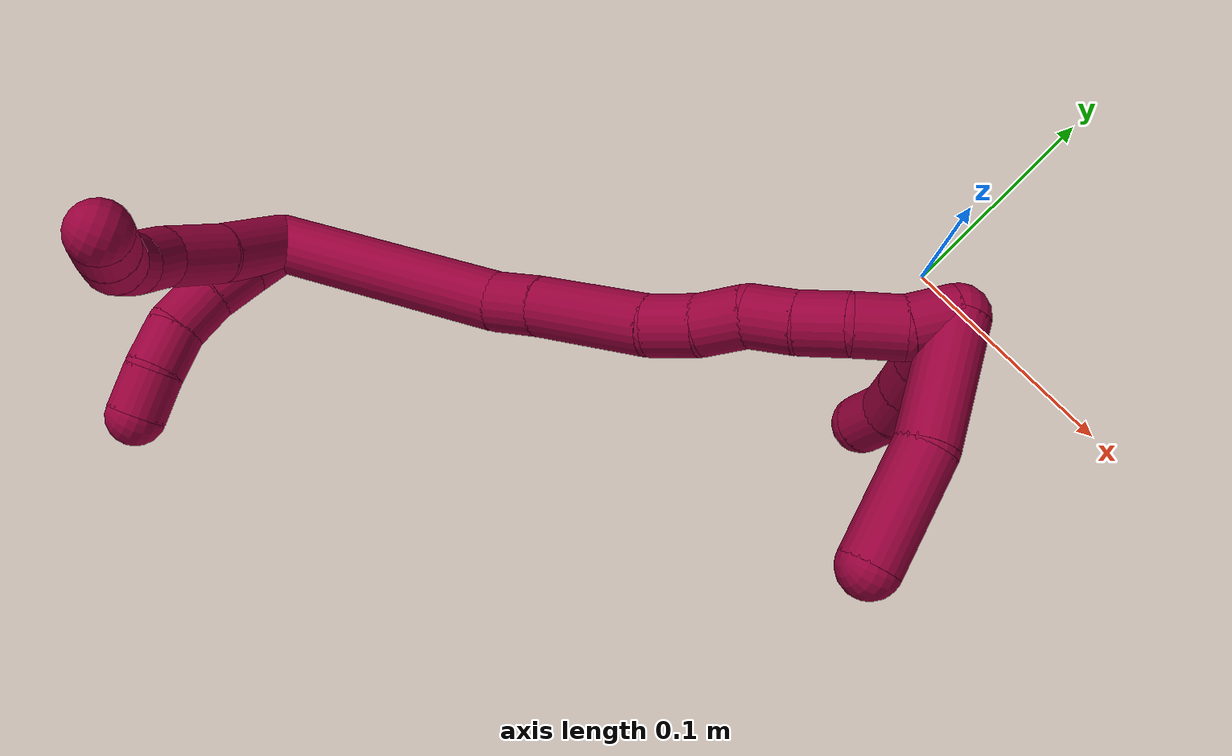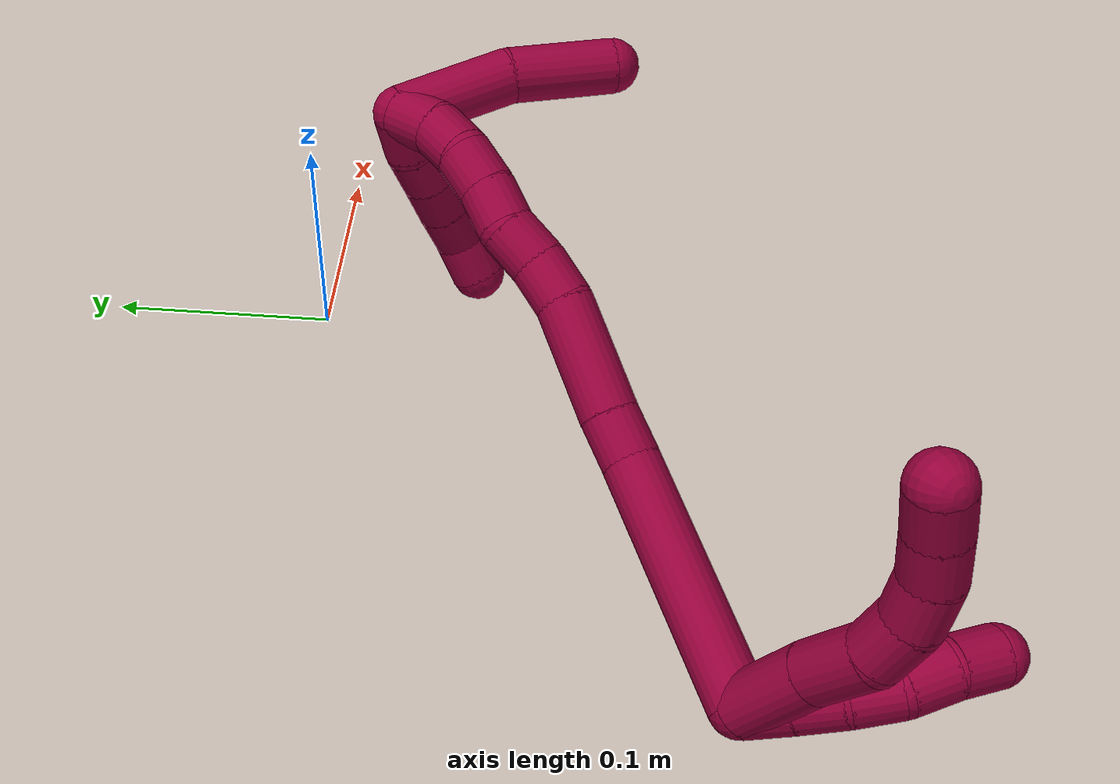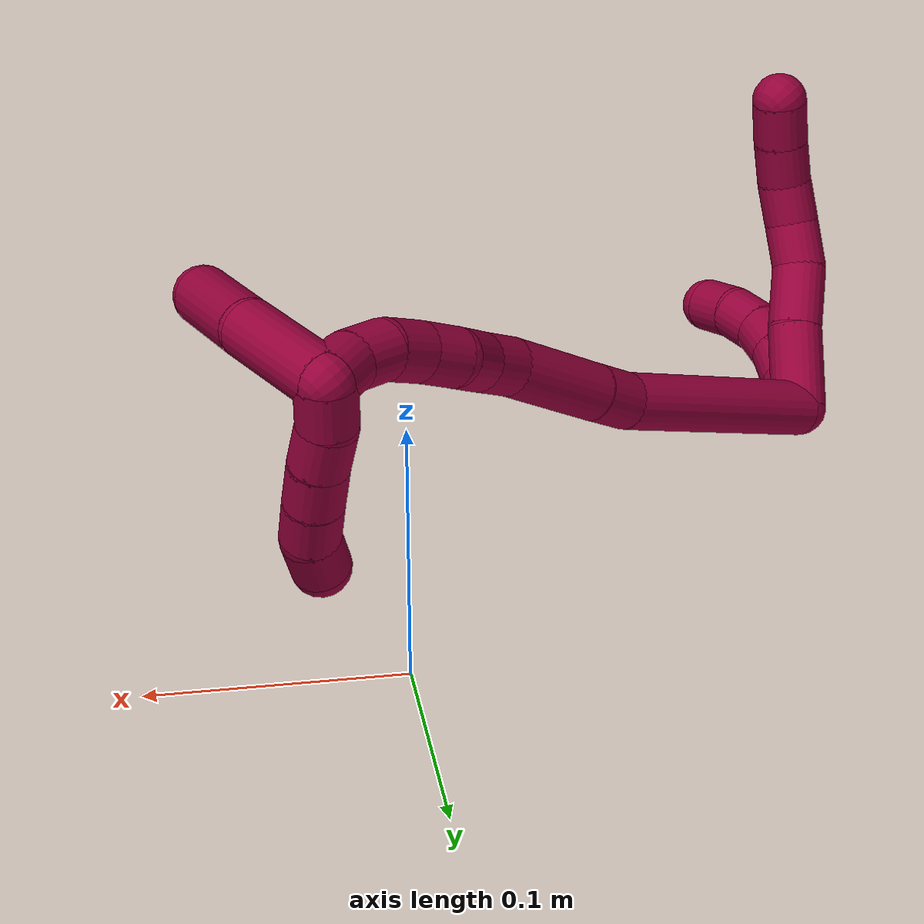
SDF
<sdf version="1.7">
 <world name="default">
  <model name="8">
   <static>0</static>
   <link name="8">
    <collision name="collision-cylinder-e_1_2_8">
     <pose>0.013883 -0.001551 0.012957 0.119114 0.816331 0.051561</pose>
     <geometry><cylinder><radius>0.0125</radius><length>0.038106</length></cylinder></geometry>
     <surface>
      <friction><ode><mu>1.16</mu><mu2>1.16</mu2><slip1>0</slip1><slip2>0</slip2></ode></friction>
      <contact><ode><kp>1e+06</kp><kd>1</kd><max_vel>0</max_vel><min_depth>0.001</min_depth></ode></contact>
     </surface>
    </collision>
    <visual name="visual-cylinder-e_1_2_8">
     <pose>0.013883 -0.001551 0.012957 0.119114 0.816331 0.051561</pose>
     <geometry><cylinder><radius>0.0125</radius><length>0.038106</length></cylinder></geometry>
     <material><ambient>0.584314 0 0.227451 1</ambient></material>
    </visual>
    <collision name="collision-cylinder-e_2_8_9">
     <pose>0.037263 -0.004254 0.037216 0.101597 0.696268 0.036899</pose>
     <geometry><cylinder><radius>0.0125</radius><length>0.029616</length></cylinder></geometry>
     <surface>
      <friction><ode><mu>1.16</mu><mu2>1.16</mu2><slip1>0</slip1><slip2>0</slip2></ode></friction>
      <contact><ode><kp>1e+06</kp><kd>1</kd><max_vel>0</max_vel><min_depth>0.001</min_depth></ode></contact>
     </surface>
    </collision>
    <visual name="visual-cylinder-e_2_8_9">
     <pose>0.037263 -0.004254 0.037216 0.101597 0.696268 0.036899</pose>
     <geometry><cylinder><radius>0.0125</radius><length>0.029616</length></cylinder></geometry>
     <material><ambient>0.584314 0 0.227451 1</ambient></material>
    </visual>
    <collision name="collision-cylinder-e_3_9_10">
     <pose>0.055801 -0.004874 0.054159 -0.093973 1.01109 -0.052043</pose>
     <geometry><cylinder><radius>0.0125</radius><length>0.021339</length></cylinder></geometry>
     <surface>
      <friction><ode><mu>1.16</mu><mu2>1.16</mu2><slip1>0</slip1><slip2>0</slip2></ode></friction>
      <contact><ode><kp>1e+06</kp><kd>1</kd><max_vel>0</max_vel><min_depth>0.001</min_depth></ode></contact>
     </surface>
    </collision>
    <visual name="visual-cylinder-e_3_9_10">
     <pose>0.055801 -0.004874 0.054159 -0.093973 1.01109 -0.052043</pose>
     <geometry><cylinder><radius>0.0125</radius><length>0.021339</length></cylinder></geometry>
     <material><ambient>0.584314 0 0.227451 1</ambient></material>
    </visual>
    <collision name="collision-cylinder-e_4_10_11">
     <pose>0.073674 -0.001122 0.063647 -0.696886 1.05406 -0.41666</pose>
     <geometry><cylinder><radius>0.0125</radius><length>0.020315</length></cylinder></geometry>
     <surface>
      <friction><ode><mu>1.16</mu><mu2>1.16</mu2><slip1>0</slip1><slip2>0</slip2></ode></friction>
      <contact><ode><kp>1e+06</kp><kd>1</kd><max_vel>0</max_vel><min_depth>0.001</min_depth></ode></contact>
     </surface>
    </collision>
    <visual name="visual-cylinder-e_4_10_11">
     <pose>0.073674 -0.001122 0.063647 -0.696886 1.05406 -0.41666</pose>
     <geometry><cylinder><radius>0.0125</radius><length>0.020315</length></cylinder></geometry>
     <material><ambient>0.584314 0 0.227451 1</ambient></material>
    </visual>
    <collision name="collision-cylinder-e_5_11_12">
     <pose>0.090485 0.007734 0.07047 -1.08507 0.89689 -0.564641</pose>
     <geometry><cylinder><radius>0.0125</radius><length>0.020423</length></cylinder></geometry>
     <surface>
      <friction><ode><mu>1.16</mu><mu2>1.16</mu2><slip1>0</slip1><slip2>0</slip2></ode></friction>
      <contact><ode><kp>1e+06</kp><kd>1</kd><max_vel>0</max_vel><min_depth>0.001</min_depth></ode></contact>
     </surface>
    </collision>
    <visual name="visual-cylinder-e_5_11_12">
     <pose>0.090485 0.007734 0.07047 -1.08507 0.89689 -0.564641</pose>
     <geometry><cylinder><radius>0.0125</radius><length>0.020423</length></cylinder></geometry>
     <material><ambient>0.584314 0 0.227451 1</ambient></material>
    </visual>
    <collision name="collision-cylinder-e_6_12_6">
     <pose>0.10597 0.019396 0.076505 -1.10098 0.837765 -0.53352</pose>
     <geometry><cylinder><radius>0.0125</radius><length>0.020201</length></cylinder></geometry>
     <surface>
      <friction><ode><mu>1.16</mu><mu2>1.16</mu2><slip1>0</slip1><slip2>0</slip2></ode></friction>
      <contact><ode><kp>1e+06</kp><kd>1</kd><max_vel>0</max_vel><min_depth>0.001</min_depth></ode></contact>
     </surface>
    </collision>
    <visual name="visual-cylinder-e_6_12_6">
     <pose>0.10597 0.019396 0.076505 -1.10098 0.837765 -0.53352</pose>
     <geometry><cylinder><radius>0.0125</radius><length>0.020201</length></cylinder></geometry>
     <material><ambient>0.584314 0 0.227451 1</ambient></material>
    </visual>
    <collision name="collision-cylinder-e_1_2_13">
     <pose>0.005357 -0.006347 0.005569 0.850606 0.565328 0.261607</pose>
     <geometry><cylinder><radius>0.0125</radius><length>0.02</length></cylinder></geometry>
     <surface>
      <friction><ode><mu>1.16</mu><mu2>1.16</mu2><slip1>0</slip1><slip2>0</slip2></ode></friction>
      <contact><ode><kp>1e+06</kp><kd>1</kd><max_vel>0</max_vel><min_depth>0.001</min_depth></ode></contact>
     </surface>
    </collision>
    <visual name="visual-cylinder-e_1_2_13">
     <pose>0.005357 -0.006347 0.005569 0.850606 0.565328 0.261607</pose>
     <geometry><cylinder><radius>0.0125</radius><length>0.02</length></cylinder></geometry>
     <material><ambient>0.584314 0 0.227451 1</ambient></material>
    </visual>
    <collision name="collision-cylinder-e_2_13_14">
     <pose>0.016252 -0.019051 0.016516 0.868627 0.58692 0.278524</pose>
     <geometry><cylinder><radius>0.0125</radius><length>0.02</length></cylinder></geometry>
     <surface>
      <friction><ode><mu>1.16</mu><mu2>1.16</mu2><slip1>0</slip1><slip2>0</slip2></ode></friction>
      <contact><ode><kp>1e+06</kp><kd>1</kd><max_vel>0</max_vel><min_depth>0.001</min_depth></ode></contact>
     </surface>
    </collision>
    <visual name="visual-cylinder-e_2_13_14">
     <pose>0.016252 -0.019051 0.016516 0.868627 0.58692 0.278524</pose>
     <geometry><cylinder><radius>0.0125</radius><length>0.02</length></cylinder></geometry>
     <material><ambient>0.584314 0 0.227451 1</ambient></material>
    </visual>
    <collision name="collision-cylinder-e_3_14_15">
     <pose>0.02743 -0.032742 0.02569 1.09321 0.599219 0.37157</pose>
     <geometry><cylinder><radius>0.0125</radius><length>0.02</length></cylinder></geometry>
     <surface>
      <friction><ode><mu>1.16</mu><mu2>1.16</mu2><slip1>0</slip1><slip2>0</slip2></ode></friction>
      <contact><ode><kp>1e+06</kp><kd>1</kd><max_vel>0</max_vel><min_depth>0.001</min_depth></ode></contact>
     </surface>
    </collision>
    <visual name="visual-cylinder-e_3_14_15">
     <pose>0.02743 -0.032742 0.02569 1.09321 0.599219 0.37157</pose>
     <geometry><cylinder><radius>0.0125</radius><length>0.02</length></cylinder></geometry>
     <material><ambient>0.584314 0 0.227451 1</ambient></material>
    </visual>
    <collision name="collision-cylinder-e_4_15_16">
     <pose>0.039288 -0.047831 0.030578 1.43081 0.671079 0.588471</pose>
     <geometry><cylinder><radius>0.0125</radius><length>0.02</length></cylinder></geometry>
     <surface>
      <friction><ode><mu>1.16</mu><mu2>1.16</mu2><slip1>0</slip1><slip2>0</slip2></ode></friction>
      <contact><ode><kp>1e+06</kp><kd>1</kd><max_vel>0</max_vel><min_depth>0.001</min_depth></ode></contact>
     </surface>
    </collision>
    <visual name="visual-cylinder-e_4_15_16">
     <pose>0.039288 -0.047831 0.030578 1.43081 0.671079 0.588471</pose>
     <geometry><cylinder><radius>0.0125</radius><length>0.02</length></cylinder></geometry>
     <material><ambient>0.584314 0 0.227451 1</ambient></material>
    </visual>
    <collision name="collision-cylinder-e_5_16_5">
     <pose>0.050148 -0.064443 0.031676 1.57016 0.482641 0.482344</pose>
     <geometry><cylinder><radius>0.0125</radius><length>0.02</length></cylinder></geometry>
     <surface>
      <friction><ode><mu>1.16</mu><mu2>1.16</mu2><slip1>0</slip1><slip2>0</slip2></ode></friction>
      <contact><ode><kp>1e+06</kp><kd>1</kd><max_vel>0</max_vel><min_depth>0.001</min_depth></ode></contact>
     </surface>
    </collision>
    <visual name="visual-cylinder-e_5_16_5">
     <pose>0.050148 -0.064443 0.031676 1.57016 0.482641 0.482344</pose>
     <geometry><cylinder><radius>0.0125</radius><length>0.02</length></cylinder></geometry>
     <material><ambient>0.584314 0 0.227451 1</ambient></material>
    </visual>
    <collision name="collision-cylinder-e_1_2_17">
     <pose>0.030594 0.019027 -0.039056 -2.68826 0.613558 -1.883</pose>
     <geometry><cylinder><radius>0.0125</radius><length>0.106271</length></cylinder></geometry>
     <surface>
      <friction><ode><mu>1.16</mu><mu2>1.16</mu2><slip1>0</slip1><slip2>0</slip2></ode></friction>
      <contact><ode><kp>1e+06</kp><kd>1</kd><max_vel>0</max_vel><min_depth>0.001</min_depth></ode></contact>
     </surface>
    </collision>
    <visual name="visual-cylinder-e_1_2_17">
     <pose>0.030594 0.019027 -0.039056 -2.68826 0.613558 -1.883</pose>
     <geometry><cylinder><radius>0.0125</radius><length>0.106271</length></cylinder></geometry>
     <material><ambient>0.584314 0 0.227451 1</ambient></material>
    </visual>
    <collision name="collision-cylinder-e_2_17_18">
     <pose>0.067904 0.043464 -0.084506 -2.43934 0.675767 -1.52915</pose>
     <geometry><cylinder><radius>0.0125</radius><length>0.02147</length></cylinder></geometry>
     <surface>
      <friction><ode><mu>1.16</mu><mu2>1.16</mu2><slip1>0</slip1><slip2>0</slip2></ode></friction>
      <contact><ode><kp>1e+06</kp><kd>1</kd><max_vel>0</max_vel><min_depth>0.001</min_depth></ode></contact>
     </surface>
    </collision>
    <visual name="visual-cylinder-e_2_17_18">
     <pose>0.067904 0.043464 -0.084506 -2.43934 0.675767 -1.52915</pose>
     <geometry><cylinder><radius>0.0125</radius><length>0.02147</length></cylinder></geometry>
     <material><ambient>0.584314 0 0.227451 1</ambient></material>
    </visual>
    <collision name="collision-cylinder-e_3_18_19">
     <pose>0.091561 0.060638 -0.106019 -2.48036 0.724152 -1.66923</pose>
     <geometry><cylinder><radius>0.0125</radius><length>0.051148</length></cylinder></geometry>
     <surface>
      <friction><ode><mu>1.16</mu><mu2>1.16</mu2><slip1>0</slip1><slip2>0</slip2></ode></friction>
      <contact><ode><kp>1e+06</kp><kd>1</kd><max_vel>0</max_vel><min_depth>0.001</min_depth></ode></contact>
     </surface>
    </collision>
    <visual name="visual-cylinder-e_3_18_19">
     <pose>0.091561 0.060638 -0.106019 -2.48036 0.724152 -1.66923</pose>
     <geometry><cylinder><radius>0.0125</radius><length>0.051148</length></cylinder></geometry>
     <material><ambient>0.584314 0 0.227451 1</ambient></material>
    </visual>
    <collision name="collision-cylinder-e_4_19_20">
     <pose>0.113839 0.078423 -0.127709 -2.39982 0.539383 -1.23591</pose>
     <geometry><cylinder><radius>0.0125</radius><length>0.020776</length></cylinder></geometry>
     <surface>
      <friction><ode><mu>1.16</mu><mu2>1.16</mu2><slip1>0</slip1><slip2>0</slip2></ode></friction>
      <contact><ode><kp>1e+06</kp><kd>1</kd><max_vel>0</max_vel><min_depth>0.001</min_depth></ode></contact>
     </surface>
    </collision>
    <visual name="visual-cylinder-e_4_19_20">
     <pose>0.113839 0.078423 -0.127709 -2.39982 0.539383 -1.23591</pose>
     <geometry><cylinder><radius>0.0125</radius><length>0.020776</length></cylinder></geometry>
     <material><ambient>0.584314 0 0.227451 1</ambient></material>
    </visual>
    <collision name="collision-cylinder-e_5_20_21">
     <pose>0.123302 0.091653 -0.139929 -2.23546 0.423473 -0.831584</pose>
     <geometry><cylinder><radius>0.0125</radius><length>0.02009</length></cylinder></geometry>
     <surface>
      <friction><ode><mu>1.16</mu><mu2>1.16</mu2><slip1>0</slip1><slip2>0</slip2></ode></friction>
      <contact><ode><kp>1e+06</kp><kd>1</kd><max_vel>0</max_vel><min_depth>0.001</min_depth></ode></contact>
     </surface>
    </collision>
    <visual name="visual-cylinder-e_5_20_21">
     <pose>0.123302 0.091653 -0.139929 -2.23546 0.423473 -0.831584</pose>
     <geometry><cylinder><radius>0.0125</radius><length>0.02009</length></cylinder></geometry>
     <material><ambient>0.584314 0 0.227451 1</ambient></material>
    </visual>
    <collision name="collision-cylinder-e_6_21_22">
     <pose>0.133277 0.10354 -0.152225 -2.52832 0.623525 -1.58848</pose>
     <geometry><cylinder><radius>0.0125</radius><length>0.020025</length></cylinder></geometry>
     <surface>
      <friction><ode><mu>1.16</mu><mu2>1.16</mu2><slip1>0</slip1><slip2>0</slip2></ode></friction>
      <contact><ode><kp>1e+06</kp><kd>1</kd><max_vel>0</max_vel><min_depth>0.001</min_depth></ode></contact>
     </surface>
    </collision>
    <visual name="visual-cylinder-e_6_21_22">
     <pose>0.133277 0.10354 -0.152225 -2.52832 0.623525 -1.58848</pose>
     <geometry><cylinder><radius>0.0125</radius><length>0.020025</length></cylinder></geometry>
     <material><ambient>0.584314 0 0.227451 1</ambient></material>
    </visual>
    <collision name="collision-cylinder-e_7_22_23">
     <pose>0.14405 0.113753 -0.165678 -2.45882 0.511706 -1.26928</pose>
     <geometry><cylinder><radius>0.0125</radius><length>0.020123</length></cylinder></geometry>
     <surface>
      <friction><ode><mu>1.16</mu><mu2>1.16</mu2><slip1>0</slip1><slip2>0</slip2></ode></friction>
      <contact><ode><kp>1e+06</kp><kd>1</kd><max_vel>0</max_vel><min_depth>0.001</min_depth></ode></contact>
     </surface>
    </collision>
    <visual name="visual-cylinder-e_7_22_23">
     <pose>0.14405 0.113753 -0.165678 -2.45882 0.511706 -1.26928</pose>
     <geometry><cylinder><radius>0.0125</radius><length>0.020123</length></cylinder></geometry>
     <material><ambient>0.584314 0 0.227451 1</ambient></material>
    </visual>
    <collision name="collision-cylinder-e_8_23_24">
     <pose>0.151778 0.123907 -0.180949 -2.64204 0.282758 -1.01782</pose>
     <geometry><cylinder><radius>0.0125</radius><length>0.020082</length></cylinder></geometry>
     <surface>
      <friction><ode><mu>1.16</mu><mu2>1.16</mu2><slip1>0</slip1><slip2>0</slip2></ode></friction>
      <contact><ode><kp>1e+06</kp><kd>1</kd><max_vel>0</max_vel><min_depth>0.001</min_depth></ode></contact>
     </surface>
    </collision>
    <visual name="visual-cylinder-e_8_23_24">
     <pose>0.151778 0.123907 -0.180949 -2.64204 0.282758 -1.01782</pose>
     <geometry><cylinder><radius>0.0125</radius><length>0.020082</length></cylinder></geometry>
     <material><ambient>0.584314 0 0.227451 1</ambient></material>
    </visual>
    <collision name="collision-cylinder-e_9_24_1">
     <pose>0.154632 0.134785 -0.197221 -2.46592 0.005213 -0.014839</pose>
     <geometry><cylinder><radius>0.0125</radius><length>0.020014</length></cylinder></geometry>
     <surface>
      <friction><ode><mu>1.16</mu><mu2>1.16</mu2><slip1>0</slip1><slip2>0</slip2></ode></friction>
      <contact><ode><kp>1e+06</kp><kd>1</kd><max_vel>0</max_vel><min_depth>0.001</min_depth></ode></contact>
     </surface>
    </collision>
    <visual name="visual-cylinder-e_9_24_1">
     <pose>0.154632 0.134785 -0.197221 -2.46592 0.005213 -0.014839</pose>
     <geometry><cylinder><radius>0.0125</radius><length>0.020014</length></cylinder></geometry>
     <material><ambient>0.584314 0 0.227451 1</ambient></material>
    </visual>
    <collision name="collision-cylinder-e_1_1_25">
     <pose>0.171648 0.12111 -0.204041 1.52127 0.704498 0.67301</pose>
     <geometry><cylinder><radius>0.0125</radius><length>0.052387</length></cylinder></geometry>
     <surface>
      <friction><ode><mu>1.16</mu><mu2>1.16</mu2><slip1>0</slip1><slip2>0</slip2></ode></friction>
      <contact><ode><kp>1e+06</kp><kd>1</kd><max_vel>0</max_vel><min_depth>0.001</min_depth></ode></contact>
     </surface>
    </collision>
    <visual name="visual-cylinder-e_1_1_25">
     <pose>0.171648 0.12111 -0.204041 1.52127 0.704498 0.67301</pose>
     <geometry><cylinder><radius>0.0125</radius><length>0.052387</length></cylinder></geometry>
     <material><ambient>0.584314 0 0.227451 1</ambient></material>
    </visual>
    <collision name="collision-cylinder-e_2_25_4">
     <pose>0.199637 0.080328 -0.199802 1.41612 0.481475 0.414342</pose>
     <geometry><cylinder><radius>0.0125</radius><length>0.047613</length></cylinder></geometry>
     <surface>
      <friction><ode><mu>1.16</mu><mu2>1.16</mu2><slip1>0</slip1><slip2>0</slip2></ode></friction>
      <contact><ode><kp>1e+06</kp><kd>1</kd><max_vel>0</max_vel><min_depth>0.001</min_depth></ode></contact>
     </surface>
    </collision>
    <visual name="visual-cylinder-e_2_25_4">
     <pose>0.199637 0.080328 -0.199802 1.41612 0.481475 0.414342</pose>
     <geometry><cylinder><radius>0.0125</radius><length>0.047613</length></cylinder></geometry>
     <material><ambient>0.584314 0 0.227451 1</ambient></material>
    </visual>
    <collision name="collision-cylinder-e_1_1_26">
     <pose>0.148089 0.134272 -0.208293 2.02005 -0.72015 -1.08007</pose>
     <geometry><cylinder><radius>0.0125</radius><length>0.02</length></cylinder></geometry>
     <surface>
      <friction><ode><mu>1.16</mu><mu2>1.16</mu2><slip1>0</slip1><slip2>0</slip2></ode></friction>
      <contact><ode><kp>1e+06</kp><kd>1</kd><max_vel>0</max_vel><min_depth>0.001</min_depth></ode></contact>
     </surface>
    </collision>
    <visual name="visual-cylinder-e_1_1_26">
     <pose>0.148089 0.134272 -0.208293 2.02005 -0.72015 -1.08007</pose>
     <geometry><cylinder><radius>0.0125</radius><length>0.02</length></cylinder></geometry>
     <material><ambient>0.584314 0 0.227451 1</ambient></material>
    </visual>
    <collision name="collision-cylinder-e_2_26_27">
     <pose>0.136638 0.11983 -0.215751 2.07104 -0.507053 -0.823838</pose>
     <geometry><cylinder><radius>0.0125</radius><length>0.02</length></cylinder></geometry>
     <surface>
      <friction><ode><mu>1.16</mu><mu2>1.16</mu2><slip1>0</slip1><slip2>0</slip2></ode></friction>
      <contact><ode><kp>1e+06</kp><kd>1</kd><max_vel>0</max_vel><min_depth>0.001</min_depth></ode></contact>
     </surface>
    </collision>
    <visual name="visual-cylinder-e_2_26_27">
     <pose>0.136638 0.11983 -0.215751 2.07104 -0.507053 -0.823838</pose>
     <geometry><cylinder><radius>0.0125</radius><length>0.02</length></cylinder></geometry>
     <material><ambient>0.584314 0 0.227451 1</ambient></material>
    </visual>
    <collision name="collision-cylinder-e_3_27_28">
     <pose>0.126558 0.104425 -0.223534 2.00539 -0.54971 -0.832015</pose>
     <geometry><cylinder><radius>0.0125</radius><length>0.02</length></cylinder></geometry>
     <surface>
      <friction><ode><mu>1.16</mu><mu2>1.16</mu2><slip1>0</slip1><slip2>0</slip2></ode></friction>
      <contact><ode><kp>1e+06</kp><kd>1</kd><max_vel>0</max_vel><min_depth>0.001</min_depth></ode></contact>
     </surface>
    </collision>
    <visual name="visual-cylinder-e_3_27_28">
     <pose>0.126558 0.104425 -0.223534 2.00539 -0.54971 -0.832015</pose>
     <geometry><cylinder><radius>0.0125</radius><length>0.02</length></cylinder></geometry>
     <material><ambient>0.584314 0 0.227451 1</ambient></material>
    </visual>
    <collision name="collision-cylinder-e_4_28_29">
     <pose>0.116194 0.088678 -0.230187 1.9359 -0.539745 -0.764248</pose>
     <geometry><cylinder><radius>0.0125</radius><length>0.02</length></cylinder></geometry>
     <surface>
      <friction><ode><mu>1.16</mu><mu2>1.16</mu2><slip1>0</slip1><slip2>0</slip2></ode></friction>
      <contact><ode><kp>1e+06</kp><kd>1</kd><max_vel>0</max_vel><min_depth>0.001</min_depth></ode></contact>
     </surface>
    </collision>
    <visual name="visual-cylinder-e_4_28_29">
     <pose>0.116194 0.088678 -0.230187 1.9359 -0.539745 -0.764248</pose>
     <geometry><cylinder><radius>0.0125</radius><length>0.02</length></cylinder></geometry>
     <material><ambient>0.584314 0 0.227451 1</ambient></material>
    </visual>
    <collision name="collision-cylinder-e_5_29_3">
     <pose>0.104606 0.073029 -0.233566 1.61218 -0.700894 -0.728016</pose>
     <geometry><cylinder><radius>0.0125</radius><length>0.02</length></cylinder></geometry>
     <surface>
      <friction><ode><mu>1.16</mu><mu2>1.16</mu2><slip1>0</slip1><slip2>0</slip2></ode></friction>
      <contact><ode><kp>1e+06</kp><kd>1</kd><max_vel>0</max_vel><min_depth>0.001</min_depth></ode></contact>
     </surface>
    </collision>
    <visual name="visual-cylinder-e_5_29_3">
     <pose>0.104606 0.073029 -0.233566 1.61218 -0.700894 -0.728016</pose>
     <geometry><cylinder><radius>0.0125</radius><length>0.02</length></cylinder></geometry>
     <material><ambient>0.584314 0 0.227451 1</ambient></material>
    </visual>
    <collision name="collision-sphere-3">
     <pose>0.098157 0.065393 -0.233882 0 -0 0</pose>
     <geometry><sphere><radius>0.0125</radius></sphere></geometry>
     <surface>
      <friction><ode><mu>1.16</mu><mu2>1.16</mu2><slip1>0</slip1><slip2>0</slip2></ode></friction>
      <contact><ode><kp>1e+06</kp><kd>1</kd><max_vel>0</max_vel><min_depth>0.001</min_depth></ode></contact>
     </surface>
    </collision>
    <visual name="visual-sphere-3">
     <pose>0.098157 0.065393 -0.233882 0 -0 0</pose>
     <geometry><sphere><radius>0.0125</radius></sphere></geometry>
     <material><ambient>0.584314 0 0.227451 1</ambient></material>
    </visual>
    <collision name="collision-sphere-29">
     <pose>0.111055 0.080665 -0.23325 0 -0 0</pose>
     <geometry><sphere><radius>0.0125</radius></sphere></geometry>
     <surface>
      <friction><ode><mu>1.16</mu><mu2>1.16</mu2><slip1>0</slip1><slip2>0</slip2></ode></friction>
      <contact><ode><kp>1e+06</kp><kd>1</kd><max_vel>0</max_vel><min_depth>0.001</min_depth></ode></contact>
     </surface>
    </collision>
    <visual name="visual-sphere-29">
     <pose>0.111055 0.080665 -0.23325 0 -0 0</pose>
     <geometry><sphere><radius>0.0125</radius></sphere></geometry>
     <material><ambient>0.584314 0 0.227451 1</ambient></material>
    </visual>
    <collision name="collision-sphere-28">
     <pose>0.121333 0.096691 -0.227124 0 -0 0</pose>
     <geometry><sphere><radius>0.0125</radius></sphere></geometry>
     <surface>
      <friction><ode><mu>1.16</mu><mu2>1.16</mu2><slip1>0</slip1><slip2>0</slip2></ode></friction>
      <contact><ode><kp>1e+06</kp><kd>1</kd><max_vel>0</max_vel><min_depth>0.001</min_depth></ode></contact>
     </surface>
    </collision>
    <visual name="visual-sphere-28">
     <pose>0.121333 0.096691 -0.227124 0 -0 0</pose>
     <geometry><sphere><radius>0.0125</radius></sphere></geometry>
     <material><ambient>0.584314 0 0.227451 1</ambient></material>
    </visual>
    <collision name="collision-sphere-27">
     <pose>0.131782 0.11216 -0.219944 0 -0 0</pose>
     <geometry><sphere><radius>0.0125</radius></sphere></geometry>
     <surface>
      <friction><ode><mu>1.16</mu><mu2>1.16</mu2><slip1>0</slip1><slip2>0</slip2></ode></friction>
      <contact><ode><kp>1e+06</kp><kd>1</kd><max_vel>0</max_vel><min_depth>0.001</min_depth></ode></contact>
     </surface>
    </collision>
    <visual name="visual-sphere-27">
     <pose>0.131782 0.11216 -0.219944 0 -0 0</pose>
     <geometry><sphere><radius>0.0125</radius></sphere></geometry>
     <material><ambient>0.584314 0 0.227451 1</ambient></material>
    </visual>
    <collision name="collision-sphere-26">
     <pose>0.141494 0.127501 -0.211558 0 -0 0</pose>
     <geometry><sphere><radius>0.0125</radius></sphere></geometry>
     <surface>
      <friction><ode><mu>1.16</mu><mu2>1.16</mu2><slip1>0</slip1><slip2>0</slip2></ode></friction>
      <contact><ode><kp>1e+06</kp><kd>1</kd><max_vel>0</max_vel><min_depth>0.001</min_depth></ode></contact>
     </surface>
    </collision>
    <visual name="visual-sphere-26">
     <pose>0.141494 0.127501 -0.211558 0 -0 0</pose>
     <geometry><sphere><radius>0.0125</radius></sphere></geometry>
     <material><ambient>0.584314 0 0.227451 1</ambient></material>
    </visual>
    <collision name="collision-sphere-4">
     <pose>0.210662 0.05948 -0.196551 0 -0 0</pose>
     <geometry><sphere><radius>0.0125</radius></sphere></geometry>
     <surface>
      <friction><ode><mu>1.16</mu><mu2>1.16</mu2><slip1>0</slip1><slip2>0</slip2></ode></friction>
      <contact><ode><kp>1e+06</kp><kd>1</kd><max_vel>0</max_vel><min_depth>0.001</min_depth></ode></contact>
     </surface>
    </collision>
    <visual name="visual-sphere-4">
     <pose>0.210662 0.05948 -0.196551 0 -0 0</pose>
     <geometry><sphere><radius>0.0125</radius></sphere></geometry>
     <material><ambient>0.584314 0 0.227451 1</ambient></material>
    </visual>
    <collision name="collision-sphere-25">
     <pose>0.188613 0.101177 -0.203053 0 -0 0</pose>
     <geometry><sphere><radius>0.0125</radius></sphere></geometry>
     <surface>
      <friction><ode><mu>1.16</mu><mu2>1.16</mu2><slip1>0</slip1><slip2>0</slip2></ode></friction>
      <contact><ode><kp>1e+06</kp><kd>1</kd><max_vel>0</max_vel><min_depth>0.001</min_depth></ode></contact>
     </surface>
    </collision>
    <visual name="visual-sphere-25">
     <pose>0.188613 0.101177 -0.203053 0 -0 0</pose>
     <geometry><sphere><radius>0.0125</radius></sphere></geometry>
     <material><ambient>0.584314 0 0.227451 1</ambient></material>
    </visual>
    <collision name="collision-sphere-1">
     <pose>0.154684 0.141043 -0.205029 0 -0 0</pose>
     <geometry><sphere><radius>0.0125</radius></sphere></geometry>
     <surface>
      <friction><ode><mu>1.16</mu><mu2>1.16</mu2><slip1>0</slip1><slip2>0</slip2></ode></friction>
      <contact><ode><kp>1e+06</kp><kd>1</kd><max_vel>0</max_vel><min_depth>0.001</min_depth></ode></contact>
     </surface>
    </collision>
    <visual name="visual-sphere-1">
     <pose>0.154684 0.141043 -0.205029 0 -0 0</pose>
     <geometry><sphere><radius>0.0125</radius></sphere></geometry>
     <material><ambient>0.584314 0 0.227451 1</ambient></material>
    </visual>
    <collision name="collision-sphere-24">
     <pose>0.15458 0.128526 -0.189413 0 -0 0</pose>
     <geometry><sphere><radius>0.0125</radius></sphere></geometry>
     <surface>
      <friction><ode><mu>1.16</mu><mu2>1.16</mu2><slip1>0</slip1><slip2>0</slip2></ode></friction>
      <contact><ode><kp>1e+06</kp><kd>1</kd><max_vel>0</max_vel><min_depth>0.001</min_depth></ode></contact>
     </surface>
    </collision>
    <visual name="visual-sphere-24">
     <pose>0.15458 0.128526 -0.189413 0 -0 0</pose>
     <geometry><sphere><radius>0.0125</radius></sphere></geometry>
     <material><ambient>0.584314 0 0.227451 1</ambient></material>
    </visual>
    <collision name="collision-sphere-23">
     <pose>0.148977 0.119288 -0.172484 0 -0 0</pose>
     <geometry><sphere><radius>0.0125</radius></sphere></geometry>
     <surface>
      <friction><ode><mu>1.16</mu><mu2>1.16</mu2><slip1>0</slip1><slip2>0</slip2></ode></friction>
      <contact><ode><kp>1e+06</kp><kd>1</kd><max_vel>0</max_vel><min_depth>0.001</min_depth></ode></contact>
     </surface>
    </collision>
    <visual name="visual-sphere-23">
     <pose>0.148977 0.119288 -0.172484 0 -0 0</pose>
     <geometry><sphere><radius>0.0125</radius></sphere></geometry>
     <material><ambient>0.584314 0 0.227451 1</ambient></material>
    </visual>
    <collision name="collision-sphere-22">
     <pose>0.139123 0.108218 -0.158872 0 -0 0</pose>
     <geometry><sphere><radius>0.0125</radius></sphere></geometry>
     <surface>
      <friction><ode><mu>1.16</mu><mu2>1.16</mu2><slip1>0</slip1><slip2>0</slip2></ode></friction>
      <contact><ode><kp>1e+06</kp><kd>1</kd><max_vel>0</max_vel><min_depth>0.001</min_depth></ode></contact>
     </surface>
    </collision>
    <visual name="visual-sphere-22">
     <pose>0.139123 0.108218 -0.158872 0 -0 0</pose>
     <geometry><sphere><radius>0.0125</radius></sphere></geometry>
     <material><ambient>0.584314 0 0.227451 1</ambient></material>
    </visual>
    <collision name="collision-sphere-21">
     <pose>0.12743 0.098861 -0.145577 0 -0 0</pose>
     <geometry><sphere><radius>0.0125</radius></sphere></geometry>
     <surface>
      <friction><ode><mu>1.16</mu><mu2>1.16</mu2><slip1>0</slip1><slip2>0</slip2></ode></friction>
      <contact><ode><kp>1e+06</kp><kd>1</kd><max_vel>0</max_vel><min_depth>0.001</min_depth></ode></contact>
     </surface>
    </collision>
    <visual name="visual-sphere-21">
     <pose>0.12743 0.098861 -0.145577 0 -0 0</pose>
     <geometry><sphere><radius>0.0125</radius></sphere></geometry>
     <material><ambient>0.584314 0 0.227451 1</ambient></material>
    </visual>
    <collision name="collision-sphere-12">
     <pose>0.098464 0.01337 0.073445 0 -0 0</pose>
     <geometry><sphere><radius>0.0125</radius></sphere></geometry>
     <surface>
      <friction><ode><mu>1.16</mu><mu2>1.16</mu2><slip1>0</slip1><slip2>0</slip2></ode></friction>
      <contact><ode><kp>1e+06</kp><kd>1</kd><max_vel>0</max_vel><min_depth>0.001</min_depth></ode></contact>
     </surface>
    </collision>
    <visual name="visual-sphere-12">
     <pose>0.098464 0.01337 0.073445 0 -0 0</pose>
     <geometry><sphere><radius>0.0125</radius></sphere></geometry>
     <material><ambient>0.584314 0 0.227451 1</ambient></material>
    </visual>
    <collision name="collision-sphere-11">
     <pose>0.082505 0.002099 0.067495 0 -0 0</pose>
     <geometry><sphere><radius>0.0125</radius></sphere></geometry>
     <surface>
      <friction><ode><mu>1.16</mu><mu2>1.16</mu2><slip1>0</slip1><slip2>0</slip2></ode></friction>
      <contact><ode><kp>1e+06</kp><kd>1</kd><max_vel>0</max_vel><min_depth>0.001</min_depth></ode></contact>
     </surface>
    </collision>
    <visual name="visual-sphere-11">
     <pose>0.082505 0.002099 0.067495 0 -0 0</pose>
     <geometry><sphere><radius>0.0125</radius></sphere></geometry>
     <material><ambient>0.584314 0 0.227451 1</ambient></material>
    </visual>
    <collision name="collision-sphere-10">
     <pose>0.064843 -0.004343 0.059799 0 -0 0</pose>
     <geometry><sphere><radius>0.0125</radius></sphere></geometry>
     <surface>
      <friction><ode><mu>1.16</mu><mu2>1.16</mu2><slip1>0</slip1><slip2>0</slip2></ode></friction>
      <contact><ode><kp>1e+06</kp><kd>1</kd><max_vel>0</max_vel><min_depth>0.001</min_depth></ode></contact>
     </surface>
    </collision>
    <visual name="visual-sphere-10">
     <pose>0.064843 -0.004343 0.059799 0 -0 0</pose>
     <geometry><sphere><radius>0.0125</radius></sphere></geometry>
     <material><ambient>0.584314 0 0.227451 1</ambient></material>
    </visual>
    <collision name="collision-sphere-9">
     <pose>0.04676 -0.005406 0.048519 0 -0 0</pose>
     <geometry><sphere><radius>0.0125</radius></sphere></geometry>
     <surface>
      <friction><ode><mu>1.16</mu><mu2>1.16</mu2><slip1>0</slip1><slip2>0</slip2></ode></friction>
      <contact><ode><kp>1e+06</kp><kd>1</kd><max_vel>0</max_vel><min_depth>0.001</min_depth></ode></contact>
     </surface>
    </collision>
    <visual name="visual-sphere-9">
     <pose>0.04676 -0.005406 0.048519 0 -0 0</pose>
     <geometry><sphere><radius>0.0125</radius></sphere></geometry>
     <material><ambient>0.584314 0 0.227451 1</ambient></material>
    </visual>
    <collision name="collision-sphere-2">
     <geometry><sphere><radius>0.0125</radius></sphere></geometry>
     <surface>
      <friction><ode><mu>1.16</mu><mu2>1.16</mu2><slip1>0</slip1><slip2>0</slip2></ode></friction>
      <contact><ode><kp>1e+06</kp><kd>1</kd><max_vel>0</max_vel><min_depth>0.001</min_depth></ode></contact>
     </surface>
    </collision>
    <visual name="visual-sphere-2">
     <geometry><sphere><radius>0.0125</radius></sphere></geometry>
     <material><ambient>0.584314 0 0.227451 1</ambient></material>
    </visual>
    <collision name="collision-sphere-19">
     <pose>0.108504 0.072402 -0.121138 0 -0 0</pose>
     <geometry><sphere><radius>0.0125</radius></sphere></geometry>
     <surface>
      <friction><ode><mu>1.16</mu><mu2>1.16</mu2><slip1>0</slip1><slip2>0</slip2></ode></friction>
      <contact><ode><kp>1e+06</kp><kd>1</kd><max_vel>0</max_vel><min_depth>0.001</min_depth></ode></contact>
     </surface>
    </collision>
    <visual name="visual-sphere-19">
     <pose>0.108504 0.072402 -0.121138 0 -0 0</pose>
     <geometry><sphere><radius>0.0125</radius></sphere></geometry>
     <material><ambient>0.584314 0 0.227451 1</ambient></material>
    </visual>
    <collision name="collision-sphere-8">
     <pose>0.027766 -0.003101 0.025914 0 -0 0</pose>
     <geometry><sphere><radius>0.0125</radius></sphere></geometry>
     <surface>
      <friction><ode><mu>1.16</mu><mu2>1.16</mu2><slip1>0</slip1><slip2>0</slip2></ode></friction>
      <contact><ode><kp>1e+06</kp><kd>1</kd><max_vel>0</max_vel><min_depth>0.001</min_depth></ode></contact>
     </surface>
    </collision>
    <visual name="visual-sphere-8">
     <pose>0.027766 -0.003101 0.025914 0 -0 0</pose>
     <geometry><sphere><radius>0.0125</radius></sphere></geometry>
     <material><ambient>0.584314 0 0.227451 1</ambient></material>
    </visual>
    <collision name="collision-sphere-6">
     <pose>0.113476 0.025422 0.079565 0 -0 0</pose>
     <geometry><sphere><radius>0.0125</radius></sphere></geometry>
     <surface>
      <friction><ode><mu>1.16</mu><mu2>1.16</mu2><slip1>0</slip1><slip2>0</slip2></ode></friction>
      <contact><ode><kp>1e+06</kp><kd>1</kd><max_vel>0</max_vel><min_depth>0.001</min_depth></ode></contact>
     </surface>
    </collision>
    <visual name="visual-sphere-6">
     <pose>0.113476 0.025422 0.079565 0 -0 0</pose>
     <geometry><sphere><radius>0.0125</radius></sphere></geometry>
     <material><ambient>0.584314 0 0.227451 1</ambient></material>
    </visual>
    <collision name="collision-sphere-13">
     <pose>0.010714 -0.012695 0.011138 0 -0 0</pose>
     <geometry><sphere><radius>0.0125</radius></sphere></geometry>
     <surface>
      <friction><ode><mu>1.16</mu><mu2>1.16</mu2><slip1>0</slip1><slip2>0</slip2></ode></friction>
      <contact><ode><kp>1e+06</kp><kd>1</kd><max_vel>0</max_vel><min_depth>0.001</min_depth></ode></contact>
     </surface>
    </collision>
    <visual name="visual-sphere-13">
     <pose>0.010714 -0.012695 0.011138 0 -0 0</pose>
     <geometry><sphere><radius>0.0125</radius></sphere></geometry>
     <material><ambient>0.584314 0 0.227451 1</ambient></material>
    </visual>
    <collision name="collision-sphere-14">
     <pose>0.02179 -0.025408 0.021894 0 -0 0</pose>
     <geometry><sphere><radius>0.0125</radius></sphere></geometry>
     <surface>
      <friction><ode><mu>1.16</mu><mu2>1.16</mu2><slip1>0</slip1><slip2>0</slip2></ode></friction>
      <contact><ode><kp>1e+06</kp><kd>1</kd><max_vel>0</max_vel><min_depth>0.001</min_depth></ode></contact>
     </surface>
    </collision>
    <visual name="visual-sphere-14">
     <pose>0.02179 -0.025408 0.021894 0 -0 0</pose>
     <geometry><sphere><radius>0.0125</radius></sphere></geometry>
     <material><ambient>0.584314 0 0.227451 1</ambient></material>
    </visual>
    <collision name="collision-sphere-15">
     <pose>0.03307 -0.040076 0.029485 0 -0 0</pose>
     <geometry><sphere><radius>0.0125</radius></sphere></geometry>
     <surface>
      <friction><ode><mu>1.16</mu><mu2>1.16</mu2><slip1>0</slip1><slip2>0</slip2></ode></friction>
      <contact><ode><kp>1e+06</kp><kd>1</kd><max_vel>0</max_vel><min_depth>0.001</min_depth></ode></contact>
     </surface>
    </collision>
    <visual name="visual-sphere-15">
     <pose>0.03307 -0.040076 0.029485 0 -0 0</pose>
     <geometry><sphere><radius>0.0125</radius></sphere></geometry>
     <material><ambient>0.584314 0 0.227451 1</ambient></material>
    </visual>
    <collision name="collision-sphere-16">
     <pose>0.045506 -0.055586 0.031671 0 -0 0</pose>
     <geometry><sphere><radius>0.0125</radius></sphere></geometry>
     <surface>
      <friction><ode><mu>1.16</mu><mu2>1.16</mu2><slip1>0</slip1><slip2>0</slip2></ode></friction>
      <contact><ode><kp>1e+06</kp><kd>1</kd><max_vel>0</max_vel><min_depth>0.001</min_depth></ode></contact>
     </surface>
    </collision>
    <visual name="visual-sphere-16">
     <pose>0.045506 -0.055586 0.031671 0 -0 0</pose>
     <geometry><sphere><radius>0.0125</radius></sphere></geometry>
     <material><ambient>0.584314 0 0.227451 1</ambient></material>
    </visual>
    <collision name="collision-sphere-5">
     <pose>0.054789 -0.073301 0.031682 0 -0 0</pose>
     <geometry><sphere><radius>0.0125</radius></sphere></geometry>
     <surface>
      <friction><ode><mu>1.16</mu><mu2>1.16</mu2><slip1>0</slip1><slip2>0</slip2></ode></friction>
      <contact><ode><kp>1e+06</kp><kd>1</kd><max_vel>0</max_vel><min_depth>0.001</min_depth></ode></contact>
     </surface>
    </collision>
    <visual name="visual-sphere-5">
     <pose>0.054789 -0.073301 0.031682 0 -0 0</pose>
     <geometry><sphere><radius>0.0125</radius></sphere></geometry>
     <material><ambient>0.584314 0 0.227451 1</ambient></material>
    </visual>
    <collision name="collision-sphere-17">
     <pose>0.061189 0.038053 -0.078112 0 -0 0</pose>
     <geometry><sphere><radius>0.0125</radius></sphere></geometry>
     <surface>
      <friction><ode><mu>1.16</mu><mu2>1.16</mu2><slip1>0</slip1><slip2>0</slip2></ode></friction>
      <contact><ode><kp>1e+06</kp><kd>1</kd><max_vel>0</max_vel><min_depth>0.001</min_depth></ode></contact>
     </surface>
    </collision>
    <visual name="visual-sphere-17">
     <pose>0.061189 0.038053 -0.078112 0 -0 0</pose>
     <geometry><sphere><radius>0.0125</radius></sphere></geometry>
     <material><ambient>0.584314 0 0.227451 1</ambient></material>
    </visual>
    <collision name="collision-sphere-18">
     <pose>0.074619 0.048874 -0.0909 0 -0 0</pose>
     <geometry><sphere><radius>0.0125</radius></sphere></geometry>
     <surface>
      <friction><ode><mu>1.16</mu><mu2>1.16</mu2><slip1>0</slip1><slip2>0</slip2></ode></friction>
      <contact><ode><kp>1e+06</kp><kd>1</kd><max_vel>0</max_vel><min_depth>0.001</min_depth></ode></contact>
     </surface>
    </collision>
    <visual name="visual-sphere-18">
     <pose>0.074619 0.048874 -0.0909 0 -0 0</pose>
     <geometry><sphere><radius>0.0125</radius></sphere></geometry>
     <material><ambient>0.584314 0 0.227451 1</ambient></material>
    </visual>
    <collision name="collision-sphere-20">
     <pose>0.119175 0.084445 -0.134281 0 -0 0</pose>
     <geometry><sphere><radius>0.0125</radius></sphere></geometry>
     <surface>
      <friction><ode><mu>1.16</mu><mu2>1.16</mu2><slip1>0</slip1><slip2>0</slip2></ode></friction>
      <contact><ode><kp>1e+06</kp><kd>1</kd><max_vel>0</max_vel><min_depth>0.001</min_depth></ode></contact>
     </surface>
    </collision>
    <visual name="visual-sphere-20">
     <pose>0.119175 0.084445 -0.134281 0 -0 0</pose>
     <geometry><sphere><radius>0.0125</radius></sphere></geometry>
     <material><ambient>0.584314 0 0.227451 1</ambient></material>
    </visual>
    <inertial>
     <pose>0.090883 0.048639 -0.085352 0 -0 0</pose>
     <mass>0.75</mass>
     <inertia>
      <ixx>-5.2e-05</ixx>
      <ixy>0</ixy>
      <ixz>0</ixz>
      <iyy>-6e-06</iyy>
      <iyz>0</iyz>
      <izz>-0.000127</izz>
     </inertia>
    </inertial>
   </link>
   <pose>-0.205411 -0.191515 0.01332 0.845395 -0.82099 -0.502018</pose>
  </model>
 </world>
</sdf>
